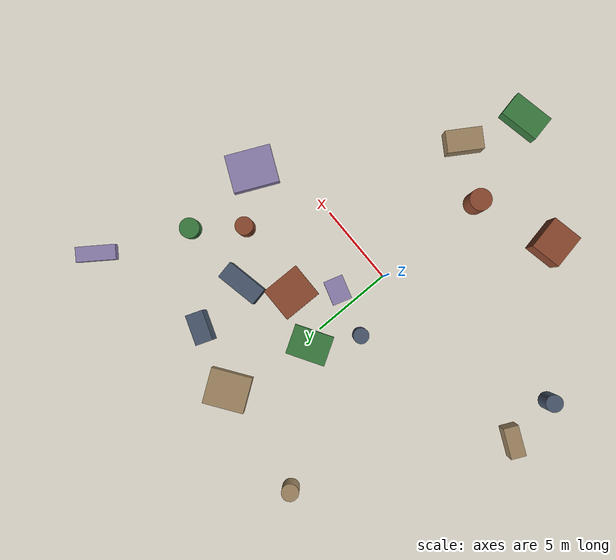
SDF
<sdf version="1.10">
 <world name="robotx_task1_uav_view">
  <gravity>0 0 -9.81</gravity>
  <physics name="physics" type="ode">
   <max_step_size>0.002</max_step_size>
   <real_time_factor>1.0</real_time_factor>
  </physics>
  <scene>
   <ambient>0.20 0.19 0.17 1.0</ambient>
   <background>0.45 0.48 0.42 1.0</background>
   <shadows>true</shadows>
   <grid>false</grid>
  </scene>
  <light name="sun" type="directional">
   <pose>0 0 300 0 0 0</pose>
   <diffuse>0.60 0.58 0.52 1.0</diffuse>
   <specular>0.30 0.35 0.28 1.0</specular>
   <direction>0.22 -0.10 -1.0</direction>
   <attenuation>
    <range>2500</range>
    <constant>0.85</constant>
    <linear>0.001</linear>
    <quadratic>0.00005</quadratic>
   </attenuation>
  </light>
  <plugin filename="gz-sim-physics-system" name="gz::sim::systems::Physics"/>
  <plugin filename="gz-sim-user-commands-system" name="gz::sim::systems::UserCommands"/>
  <plugin filename="gz-sim-scene-broadcaster-system" name="gz::sim::systems::SceneBroadcaster"/>
  <plugin filename="gz-sim-sensors-system" name="gz::sim::systems::Sensors">
   <render_engine>ogre2</render_engine>
  </plugin>
  <model name="scene_clutter_box_000">
   <static>true</static>
   <pose>-12.471 0.440 0.698 0 0 -0.437308</pose>
   <link name="link">
    <visual name="v">
     <geometry><box><size>1.872 0.921 1.356</size></box></geometry>
     <material><ambient>0.45 0.38 0.32 1.0</ambient><diffuse>0.62 0.52 0.38 1.0</diffuse></material>
    </visual>
   </link>
  </model>
  <model name="scene_clutter_box_001">
   <static>true</static>
   <pose>4.637 10.300 0.951 0 0 1.216284</pose>
   <link name="link">
    <visual name="v">
     <geometry><box><size>1.049 1.855 1.862</size></box></geometry>
     <material><ambient>0.18 0.22 0.28 1.0</ambient><diffuse>0.28 0.34 0.42 1.0</diffuse></material>
    </visual>
   </link>
  </model>
  <model name="scene_clutter_cyl_002">
   <static>true</static>
   <pose>7.510 4.458 0.989 0 0 0.719543</pose>
   <link name="link">
    <visual name="v">
     <geometry><cylinder><radius>0.544</radius><length>1.878</length></cylinder></geometry>
     <material><ambient>0.35 0.16 0.12 1.0</ambient><diffuse>0.55 0.28 0.18 1.0</diffuse></material>
    </visual>
   </link>
  </model>
  <model name="scene_clutter_box_003">
   <static>true</static>
   <pose>-0.342 6.067 0.250 0 0 -1.031116</pose>
   <link name="link">
    <visual name="v">
     <geometry><box><size>1.844 2.456 0.461</size></box></geometry>
     <material><ambient>0.12 0.30 0.14 1.0</ambient><diffuse>0.22 0.48 0.24 1.0</diffuse></material>
    </visual>
   </link>
  </model>
  <model name="scene_clutter_box_004">
   <static>true</static>
   <pose>12.112 12.332 0.359 0 0 -0.619060</pose>
   <link name="link">
    <visual name="v">
     <geometry><box><size>0.912 2.410 0.677</size></box></geometry>
     <material><ambient>0.40 0.35 0.50 1.0</ambient><diffuse>0.55 0.50 0.68 1.0</diffuse></material>
    </visual>
   </link>
  </model>
  <model name="scene_clutter_cyl_005">
   <static>true</static>
   <pose>-6.187 12.448 0.851 0 0 1.173815</pose>
   <link name="link">
    <visual name="v">
     <geometry><cylinder><radius>0.528</radius><length>1.602</length></cylinder></geometry>
     <material><ambient>0.45 0.38 0.32 1.0</ambient><diffuse>0.62 0.52 0.38 1.0</diffuse></material>
    </visual>
   </link>
  </model>
  <model name="scene_clutter_box_006">
   <static>true</static>
   <pose>5.051 6.727 0.931 0 0 0.193414</pose>
   <link name="link">
    <visual name="v">
     <geometry><box><size>2.576 1.102 1.821</size></box></geometry>
     <material><ambient>0.18 0.22 0.28 1.0</ambient><diffuse>0.28 0.34 0.42 1.0</diffuse></material>
    </visual>
   </link>
  </model>
  <model name="scene_clutter_cyl_007">
   <static>true</static>
   <pose>-0.178 -7.005 1.244 0 0 1.662685</pose>
   <link name="link">
    <visual name="v">
     <geometry><cylinder><radius>0.658</radius><length>2.388</length></cylinder></geometry>
     <material><ambient>0.35 0.16 0.12 1.0</ambient><diffuse>0.55 0.28 0.18 1.0</diffuse></material>
    </visual>
   </link>
  </model>
  <model name="scene_clutter_cyl_008">
   <static>true</static>
   <pose>9.600 7.040 0.574 0 0 2.075934</pose>
   <link name="link">
    <visual name="v">
     <geometry><cylinder><radius>0.611</radius><length>1.048</length></cylinder></geometry>
     <material><ambient>0.12 0.30 0.14 1.0</ambient><diffuse>0.22 0.48 0.24 1.0</diffuse></material>
    </visual>
   </link>
  </model>
  <model name="scene_clutter_box_009">
   <static>true</static>
   <pose>9.954 1.934 0.447 0 0 1.133224</pose>
   <link name="link">
    <visual name="v">
     <geometry><box><size>2.804 2.301 0.855</size></box></geometry>
     <material><ambient>0.40 0.35 0.50 1.0</ambient><diffuse>0.55 0.50 0.68 1.0</diffuse></material>
    </visual>
   </link>
  </model>
  <model name="scene_clutter_box_010">
   <static>true</static>
   <pose>0.762 11.549 0.452 0 0 -2.530960</pose>
   <link name="link">
    <visual name="v">
     <geometry><box><size>2.539 2.204 0.863</size></box></geometry>
     <material><ambient>0.45 0.38 0.32 1.0</ambient><diffuse>0.62 0.52 0.38 1.0</diffuse></material>
    </visual>
   </link>
  </model>
  <model name="scene_clutter_cyl_011">
   <static>true</static>
   <pose>-12.092 -2.760 0.957 0 0 0.265366</pose>
   <link name="link">
    <visual name="v">
     <geometry><cylinder><radius>0.522</radius><length>1.814</length></cylinder></geometry>
     <material><ambient>0.18 0.22 0.28 1.0</ambient><diffuse>0.28 0.34 0.42 1.0</diffuse></material>
    </visual>
   </link>
  </model>
  <model name="scene_clutter_box_012">
   <static>true</static>
   <pose>-4.949 -8.917 0.953 0 0 0.203341</pose>
   <link name="link">
    <visual name="v">
     <geometry><box><size>1.920 2.124 1.866</size></box></geometry>
     <material><ambient>0.35 0.16 0.12 1.0</ambient><diffuse>0.55 0.28 0.18 1.0</diffuse></material>
    </visual>
   </link>
  </model>
  <model name="scene_clutter_box_013">
   <static>true</static>
   <pose>1.823 -12.514 0.619 0 0 -1.363721</pose>
   <link name="link">
    <visual name="v">
     <geometry><box><size>1.547 2.501 1.199</size></box></geometry>
     <material><ambient>0.12 0.30 0.14 1.0</ambient><diffuse>0.22 0.48 0.24 1.0</diffuse></material>
    </visual>
   </link>
  </model>
  <model name="scene_clutter_box_014">
   <static>true</static>
   <pose>1.121 2.671 0.565 0 0 2.845262</pose>
   <link name="link">
    <visual name="v">
     <geometry><box><size>1.501 1.194 1.090</size></box></geometry>
     <material><ambient>0.40 0.35 0.50 1.0</ambient><diffuse>0.55 0.50 0.68 1.0</diffuse></material>
    </visual>
   </link>
  </model>
  <model name="scene_clutter_box_015">
   <static>true</static>
   <pose>3.104 -8.764 0.724 0 0 2.575497</pose>
   <link name="link">
    <visual name="v">
     <geometry><box><size>1.328 2.198 1.407</size></box></geometry>
     <material><ambient>0.45 0.38 0.32 1.0</ambient><diffuse>0.62 0.52 0.38 1.0</diffuse></material>
    </visual>
   </link>
  </model>
  <model name="scene_clutter_cyl_016">
   <static>true</static>
   <pose>-1.810 3.347 0.961 0 0 0.316676</pose>
   <link name="link">
    <visual name="v">
     <geometry><cylinder><radius>0.470</radius><length>1.822</length></cylinder></geometry>
     <material><ambient>0.18 0.22 0.28 1.0</ambient><diffuse>0.28 0.34 0.42 1.0</diffuse></material>
    </visual>
   </link>
  </model>
  <model name="scene_clutter_box_017">
   <static>true</static>
   <pose>2.759 4.848 0.771 0 0 -0.012095</pose>
   <link name="link">
    <visual name="v">
     <geometry><box><size>2.159 2.406 1.502</size></box></geometry>
     <material><ambient>0.35 0.16 0.12 1.0</ambient><diffuse>0.55 0.28 0.18 1.0</diffuse></material>
    </visual>
   </link>
  </model>
  <model name="uav_dataset_camera">
   <static>false</static>
   <pose>0 0 26 0 0 0</pose>
   <plugin filename="librobotx_overhead_motion_plugin.dylib" name="robotx::OverheadMotionPlugin">
    <radius_x_m>9.94287</radius_x_m>
    <radius_y_m>9.88781</radius_y_m>
    <angular_speed_rad_s>0.051130</angular_speed_rad_s>
    <phase_rad>3.935190</phase_rad>
    <z_wobble_m>0.09172</z_wobble_m>
    <z_wobble_hz>0.06394</z_wobble_hz>
    <z_wobble_phase_rad>4.133659</z_wobble_phase_rad>
   </plugin>
   <link name="camera_link">
    <gravity>false</gravity>
    <sensor name="top_down_rgb" type="camera">
     <always_on>true</always_on>
     <update_rate>20</update_rate>
     <pose>0 0 0 0 1.57079632679 0</pose>
     <camera>
      <horizontal_fov>1.05</horizontal_fov>
      <image><width>1920</width><height>1080</height><format>R8G8B8</format></image>
      <clip><near>0.2</near><far>600</far></clip>
     </camera>
     <topic>/robotx/uav/camera/image_raw</topic>
     <visualize>true</visualize>
    </sensor>
   </link>
  </model>
 </world>
</sdf>
